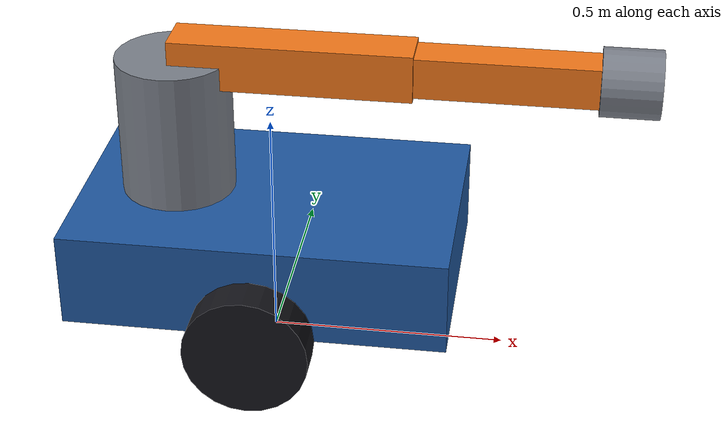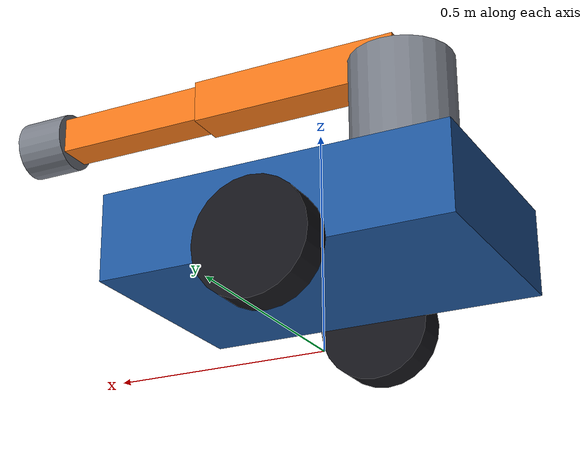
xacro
<?xml version="1.0"?>
<robot xmlns:xacro="http://www.ros.org/wiki/xacro" name="embodied_skill_comparison_robot">
  <xacro:arg name="prefix" default="demo_"/>

  <material name="$(arg prefix)chassis_material"><color rgba="0.12 0.34 0.62 1.0"/></material>
  <material name="$(arg prefix)arm_material"><color rgba="0.95 0.47 0.10 1.0"/></material>
  <material name="$(arg prefix)wheel_material"><color rgba="0.08 0.08 0.10 1.0"/></material>
  <material name="$(arg prefix)joint_material"><color rgba="0.48 0.50 0.54 1.0"/></material>

  <link name="$(arg prefix)base_link">
    <visual>
      <origin xyz="0 0 0.24"/>
      <geometry><box size="0.80 0.52 0.20"/></geometry>
      <material name="$(arg prefix)chassis_material"/>
    </visual>
  </link>

  <link name="$(arg prefix)left_wheel">
    <visual>
      <origin rpy="1.5708 0 0"/>
      <geometry><cylinder radius="0.13" length="0.08"/></geometry>
      <material name="$(arg prefix)wheel_material"/>
    </visual>
  </link>
  <joint name="$(arg prefix)left_wheel_mount" type="fixed">
    <parent link="$(arg prefix)base_link"/>
    <child link="$(arg prefix)left_wheel"/>
    <origin xyz="0 0.30 0.14"/>
  </joint>

  <link name="$(arg prefix)right_wheel">
    <visual>
      <origin rpy="1.5708 0 0"/>
      <geometry><cylinder radius="0.13" length="0.08"/></geometry>
      <material name="$(arg prefix)wheel_material"/>
    </visual>
  </link>
  <joint name="$(arg prefix)right_wheel_mount" type="fixed">
    <parent link="$(arg prefix)base_link"/>
    <child link="$(arg prefix)right_wheel"/>
    <origin xyz="0 -0.30 0.14"/>
  </joint>

  <link name="$(arg prefix)arm_base">
    <visual>
      <origin xyz="0 0 0.15"/>
      <geometry><cylinder radius="0.12" length="0.30"/></geometry>
      <material name="$(arg prefix)joint_material"/>
    </visual>
  </link>
  <joint name="$(arg prefix)arm_base_mount" type="fixed">
    <parent link="$(arg prefix)base_link"/>
    <child link="$(arg prefix)arm_base"/>
    <origin xyz="-0.20 0 0.34"/>
  </joint>

  <link name="$(arg prefix)shoulder_link">
    <visual>
      <origin xyz="0.25 0 0"/>
      <geometry><box size="0.50 0.10 0.10"/></geometry>
      <material name="$(arg prefix)arm_material"/>
    </visual>
  </link>
  <joint name="$(arg prefix)shoulder_joint" type="revolute">
    <parent link="$(arg prefix)arm_base"/>
    <child link="$(arg prefix)shoulder_link"/>
    <origin xyz="0 0 0.30"/>
    <axis xyz="0 1 0"/>
    <limit lower="-1.35" upper="0.60" effort="10" velocity="2.0"/>
  </joint>

  <link name="$(arg prefix)forearm_link">
    <visual>
      <origin xyz="0.20 0 0"/>
      <geometry><box size="0.40 0.085 0.085"/></geometry>
      <material name="$(arg prefix)arm_material"/>
    </visual>
  </link>
  <joint name="$(arg prefix)elbow_joint" type="revolute">
    <parent link="$(arg prefix)shoulder_link"/>
    <child link="$(arg prefix)forearm_link"/>
    <origin xyz="0.50 0 0"/>
    <axis xyz="0 1 0"/>
    <limit lower="-0.20" upper="2.10" effort="10" velocity="2.0"/>
  </joint>

  <link name="$(arg prefix)tool_link">
    <visual>
      <geometry><cylinder radius="0.07" length="0.12"/></geometry>
      <material name="$(arg prefix)joint_material"/>
    </visual>
  </link>
  <joint name="$(arg prefix)tool_mount" type="fixed">
    <parent link="$(arg prefix)forearm_link"/>
    <child link="$(arg prefix)tool_link"/>
    <origin xyz="0.43 0 0" rpy="0 1.5708 0"/>
  </joint>
</robot>
